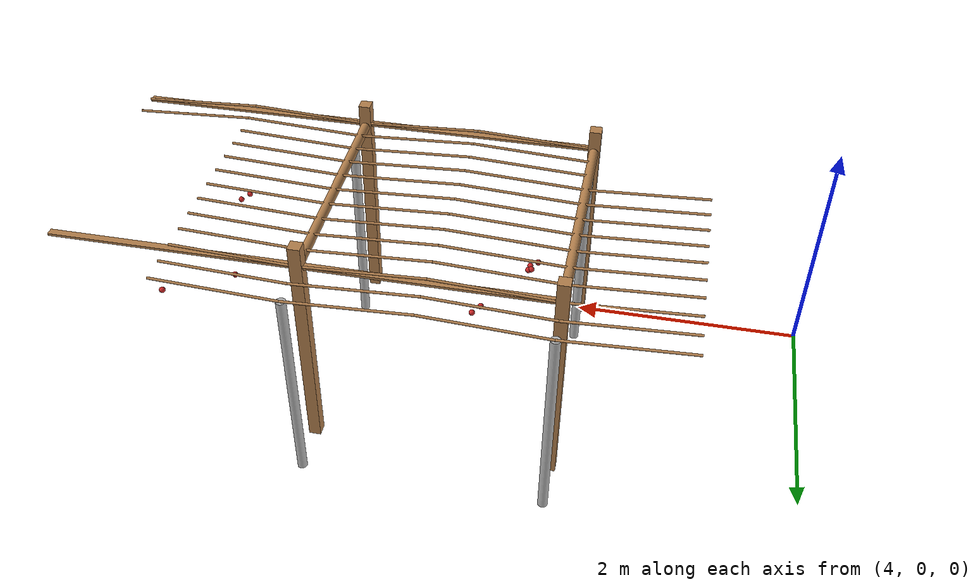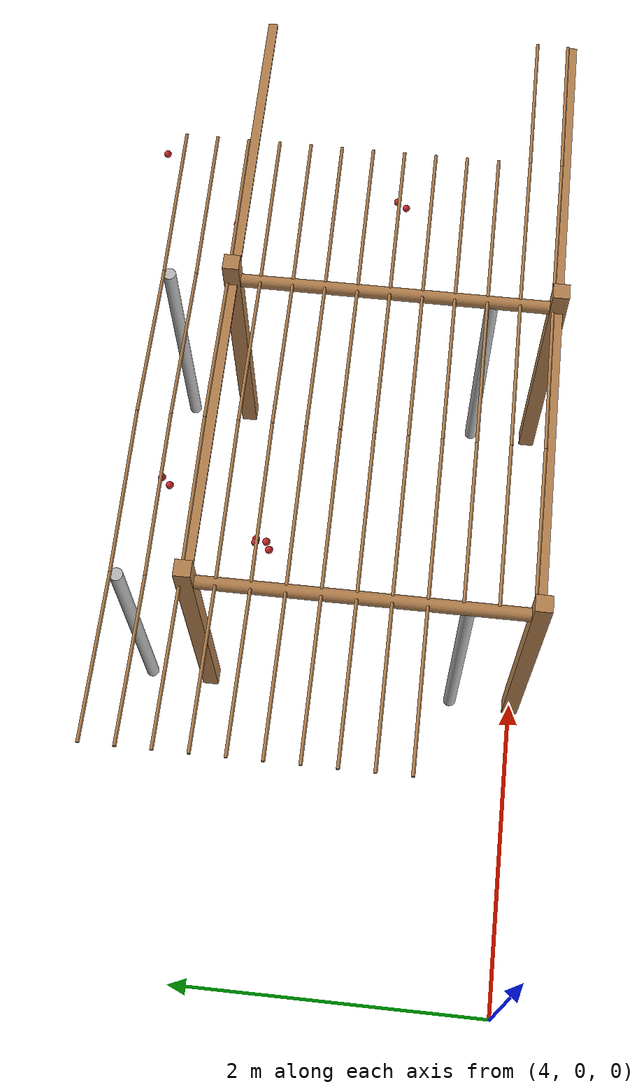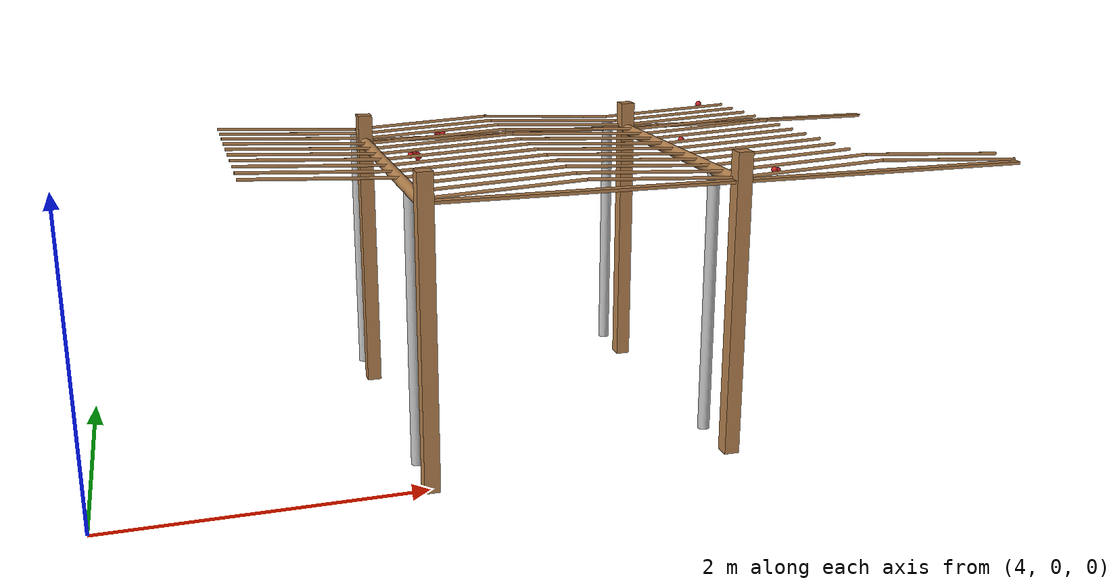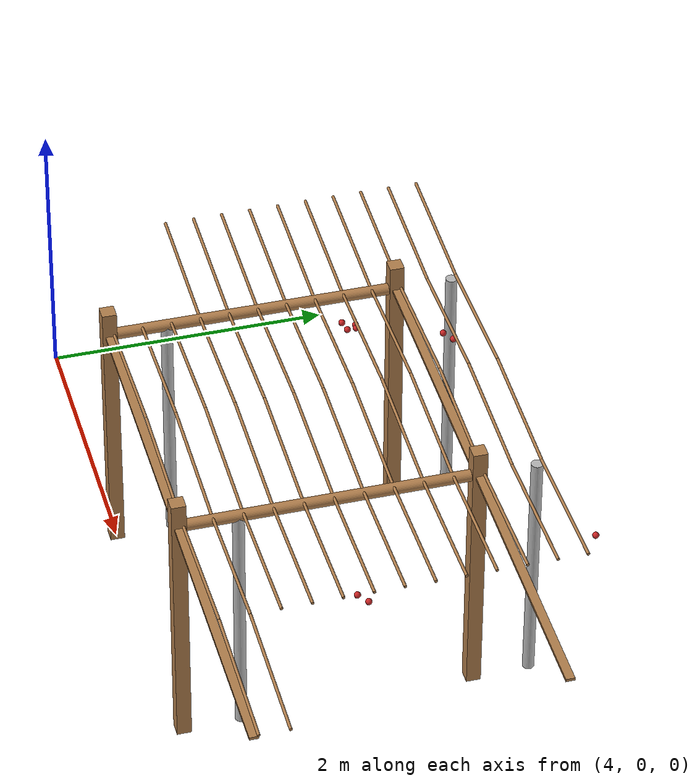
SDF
<sdf version="1.4">
 <model name="pergola">
  <include><name>post_33</name><pose>6.0 0.0 0 0 0 0</pose><uri>model://post</uri></include>
  <include><name>post_34</name><pose>6.0 2.0 0 0 0 0</pose><uri>model://post</uri></include>
  <include><name>post_44</name><pose>8.0 0.0 0 0 0 0</pose><uri>model://post</uri></include>
  <include><name>post_45</name><pose>8.0 2.0 0 0 0 0</pose><uri>model://post</uri></include>
  <link name="beam_33">
   <pose>7.0 0.0 1.81 0 0 0</pose>
   <collision name="collision"><geometry><box><size>2.0 0.06 0.02</size></box></geometry></collision>
   <visual name="visual">
    <geometry><box><size>2.0 0.06 0.02</size></box></geometry>
    <material><script><name>Gazebo/Wood</name></script></material>
   </visual>
   <inertial>
    <mass>5</mass>
    <inertia>
     <ixx>0.0016666666666666668</ixx>
     <ixy>0.0</ixy>
     <ixz>0.0</ixz>
     <iyy>1.6681666666666664</iyy>
     <iyz>0.0</iyz>
     <izz>1.6668333333333332</izz>
    </inertia>
   </inertial>
  </link>
  <link name="beam_34">
   <pose>7.0 2.0 1.81 0 0 0</pose>
   <collision name="collision"><geometry><box><size>2.0 0.06 0.02</size></box></geometry></collision>
   <visual name="visual">
    <geometry><box><size>2.0 0.06 0.02</size></box></geometry>
    <material><script><name>Gazebo/Wood</name></script></material>
   </visual>
   <inertial>
    <mass>5</mass>
    <inertia>
     <ixx>0.0016666666666666668</ixx>
     <ixy>0.0</ixy>
     <ixz>0.0</ixz>
     <iyy>1.6681666666666664</iyy>
     <iyz>0.0</iyz>
     <izz>1.6668333333333332</izz>
    </inertia>
   </inertial>
  </link>
  <link name="beam_44">
   <pose>9.0 0.0 1.81 0 0 0</pose>
   <collision name="collision"><geometry><box><size>2.0 0.06 0.02</size></box></geometry></collision>
   <visual name="visual">
    <geometry><box><size>2.0 0.06 0.02</size></box></geometry>
    <material><script><name>Gazebo/Wood</name></script></material>
   </visual>
   <inertial>
    <mass>5</mass>
    <inertia>
     <ixx>0.0016666666666666668</ixx>
     <ixy>0.0</ixy>
     <ixz>0.0</ixz>
     <iyy>1.6681666666666664</iyy>
     <iyz>0.0</iyz>
     <izz>1.6668333333333332</izz>
    </inertia>
   </inertial>
  </link>
  <link name="beam_45">
   <pose>9.0 2.0 1.81 0 0 0</pose>
   <collision name="collision"><geometry><box><size>2.0 0.06 0.02</size></box></geometry></collision>
   <visual name="visual">
    <geometry><box><size>2.0 0.06 0.02</size></box></geometry>
    <material><script><name>Gazebo/Wood</name></script></material>
   </visual>
   <inertial>
    <mass>5</mass>
    <inertia>
     <ixx>0.0016666666666666668</ixx>
     <ixy>0.0</ixy>
     <ixz>0.0</ixz>
     <iyy>1.6681666666666664</iyy>
     <iyz>0.0</iyz>
     <izz>1.6668333333333332</izz>
    </inertia>
   </inertial>
  </link>
  <include><name>tree_30</name><pose>6.0 0.4 0 0 0 0</pose><uri>model://tree_trunk</uri></include>
  <include><name>tree_31</name><pose>6.0 2.4 0 0 0 0</pose><uri>model://tree_trunk</uri></include>
  <include><name>tree_40</name><pose>8.0 0.4 0 0 0 0</pose><uri>model://tree_trunk</uri></include>
  <include><name>tree_41</name><pose>8.0 2.4 0 0 0 0</pose><uri>model://tree_trunk</uri></include>
  <link name="baseBranch_30">
   <pose>6.0 1.0 1.8 1.5707963267948966 0 0</pose>
   <collision name="collision">
    <geometry><cylinder><radius>0.04</radius><length>1.94</length></cylinder></geometry>
   </collision>
   <visual name="visual">
    <geometry><cylinder><radius>0.04</radius><length>1.94</length></cylinder></geometry>
    <material><script><name>Gazebo/WoodFloor</name></script></material>
   </visual>
   <inertial>
    <mass>10</mass>
    <inertia>
     <ixx>3.140333333333333</ixx>
     <ixy>0.0</ixy>
     <ixz>0.0</ixz>
     <iyy>3.140333333333333</iyy>
     <iyz>0.0</iyz>
     <izz>0.008</izz>
    </inertia>
   </inertial>
  </link>
  <link name="baseBranch_40">
   <pose>8.0 1.0 1.8 1.5707963267948966 0 0</pose>
   <collision name="collision">
    <geometry><cylinder><radius>0.04</radius><length>1.94</length></cylinder></geometry>
   </collision>
   <visual name="visual">
    <geometry><cylinder><radius>0.04</radius><length>1.94</length></cylinder></geometry>
    <material><script><name>Gazebo/WoodFloor</name></script></material>
   </visual>
   <inertial>
    <mass>10</mass>
    <inertia>
     <ixx>3.140333333333333</ixx>
     <ixy>0.0</ixy>
     <ixz>0.0</ixz>
     <iyy>3.140333333333333</iyy>
     <iyz>0.0</iyz>
     <izz>0.008</izz>
    </inertia>
   </inertial>
  </link>
  <link name="vine_407">
   <pose>5.5 0.6300000000000001 1.85 0 -1.5208379310729538 0</pose>
   <collision name="collision">
    <geometry><cylinder><radius>0.01</radius><length>1.0012492197250393</length></cylinder></geometry>
   </collision>
   <visual name="visual">
    <geometry><cylinder><radius>0.01</radius><length>1.0012492197250393</length></cylinder></geometry>
    <material><script><name>Gazebo/WoodFloor</name></script></material>
   </visual>
   <inertial>
    <mass>5</mass>
    <inertia>
     <ixx>0.41783333333333345</ixx>
     <ixy>0.0</ixy>
     <ixz>0.0</ixz>
     <iyy>0.41783333333333345</iyy>
     <iyz>0.0</iyz>
     <izz>0.00025</izz>
    </inertia>
   </inertial>
  </link>
  <link name="vine_409">
   <pose>5.5 0.8300000000000001 1.85 0 -1.5208379310729538 0</pose>
   <collision name="collision">
    <geometry><cylinder><radius>0.01</radius><length>1.0012492197250393</length></cylinder></geometry>
   </collision>
   <visual name="visual">
    <geometry><cylinder><radius>0.01</radius><length>1.0012492197250393</length></cylinder></geometry>
    <material><script><name>Gazebo/WoodFloor</name></script></material>
   </visual>
   <inertial>
    <mass>5</mass>
    <inertia>
     <ixx>0.41783333333333345</ixx>
     <ixy>0.0</ixy>
     <ixz>0.0</ixz>
     <iyy>0.41783333333333345</iyy>
     <iyz>0.0</iyz>
     <izz>0.00025</izz>
    </inertia>
   </inertial>
  </link>
  <link name="vine_411">
   <pose>5.5 1.03 1.85 0 -1.5208379310729538 0</pose>
   <collision name="collision">
    <geometry><cylinder><radius>0.01</radius><length>1.0012492197250393</length></cylinder></geometry>
   </collision>
   <visual name="visual">
    <geometry><cylinder><radius>0.01</radius><length>1.0012492197250393</length></cylinder></geometry>
    <material><script><name>Gazebo/WoodFloor</name></script></material>
   </visual>
   <inertial>
    <mass>5</mass>
    <inertia>
     <ixx>0.41783333333333345</ixx>
     <ixy>0.0</ixy>
     <ixz>0.0</ixz>
     <iyy>0.41783333333333345</iyy>
     <iyz>0.0</iyz>
     <izz>0.00025</izz>
    </inertia>
   </inertial>
  </link>
  <link name="vine_413">
   <pose>5.5 1.2300000000000002 1.85 0 -1.5208379310729538 0</pose>
   <collision name="collision">
    <geometry><cylinder><radius>0.01</radius><length>1.0012492197250393</length></cylinder></geometry>
   </collision>
   <visual name="visual">
    <geometry><cylinder><radius>0.01</radius><length>1.0012492197250393</length></cylinder></geometry>
    <material><script><name>Gazebo/WoodFloor</name></script></material>
   </visual>
   <inertial>
    <mass>5</mass>
    <inertia>
     <ixx>0.41783333333333345</ixx>
     <ixy>0.0</ixy>
     <ixz>0.0</ixz>
     <iyy>0.41783333333333345</iyy>
     <iyz>0.0</iyz>
     <izz>0.00025</izz>
    </inertia>
   </inertial>
  </link>
  <link name="vine_415">
   <pose>5.5 1.4300000000000002 1.85 0 -1.5208379310729538 0</pose>
   <collision name="collision">
    <geometry><cylinder><radius>0.01</radius><length>1.0012492197250393</length></cylinder></geometry>
   </collision>
   <visual name="visual">
    <geometry><cylinder><radius>0.01</radius><length>1.0012492197250393</length></cylinder></geometry>
    <material><script><name>Gazebo/WoodFloor</name></script></material>
   </visual>
   <inertial>
    <mass>5</mass>
    <inertia>
     <ixx>0.41783333333333345</ixx>
     <ixy>0.0</ixy>
     <ixz>0.0</ixz>
     <iyy>0.41783333333333345</iyy>
     <iyz>0.0</iyz>
     <izz>0.00025</izz>
    </inertia>
   </inertial>
  </link>
  <link name="vine_417">
   <pose>5.5 1.6300000000000001 1.85 0 -1.5208379310729538 0</pose>
   <collision name="collision">
    <geometry><cylinder><radius>0.01</radius><length>1.0012492197250393</length></cylinder></geometry>
   </collision>
   <visual name="visual">
    <geometry><cylinder><radius>0.01</radius><length>1.0012492197250393</length></cylinder></geometry>
    <material><script><name>Gazebo/WoodFloor</name></script></material>
   </visual>
   <inertial>
    <mass>5</mass>
    <inertia>
     <ixx>0.41783333333333345</ixx>
     <ixy>0.0</ixy>
     <ixz>0.0</ixz>
     <iyy>0.41783333333333345</iyy>
     <iyz>0.0</iyz>
     <izz>0.00025</izz>
    </inertia>
   </inertial>
  </link>
  <link name="vine_419">
   <pose>5.5 1.83 1.85 0 -1.5208379310729538 0</pose>
   <collision name="collision">
    <geometry><cylinder><radius>0.01</radius><length>1.0012492197250393</length></cylinder></geometry>
   </collision>
   <visual name="visual">
    <geometry><cylinder><radius>0.01</radius><length>1.0012492197250393</length></cylinder></geometry>
    <material><script><name>Gazebo/WoodFloor</name></script></material>
   </visual>
   <inertial>
    <mass>5</mass>
    <inertia>
     <ixx>0.41783333333333345</ixx>
     <ixy>0.0</ixy>
     <ixz>0.0</ixz>
     <iyy>0.41783333333333345</iyy>
     <iyz>0.0</iyz>
     <izz>0.00025</izz>
    </inertia>
   </inertial>
  </link>
  <link name="vine_421">
   <pose>5.5 2.03 1.85 0 -1.5208379310729538 0</pose>
   <collision name="collision">
    <geometry><cylinder><radius>0.01</radius><length>1.0012492197250393</length></cylinder></geometry>
   </collision>
   <visual name="visual">
    <geometry><cylinder><radius>0.01</radius><length>1.0012492197250393</length></cylinder></geometry>
    <material><script><name>Gazebo/WoodFloor</name></script></material>
   </visual>
   <inertial>
    <mass>5</mass>
    <inertia>
     <ixx>0.41783333333333345</ixx>
     <ixy>0.0</ixy>
     <ixz>0.0</ixz>
     <iyy>0.41783333333333345</iyy>
     <iyz>0.0</iyz>
     <izz>0.00025</izz>
    </inertia>
   </inertial>
  </link>
  <link name="vine_423">
   <pose>5.5 2.23 1.85 0 -1.5208379310729538 0</pose>
   <collision name="collision">
    <geometry><cylinder><radius>0.01</radius><length>1.0012492197250393</length></cylinder></geometry>
   </collision>
   <visual name="visual">
    <geometry><cylinder><radius>0.01</radius><length>1.0012492197250393</length></cylinder></geometry>
    <material><script><name>Gazebo/WoodFloor</name></script></material>
   </visual>
   <inertial>
    <mass>5</mass>
    <inertia>
     <ixx>0.41783333333333345</ixx>
     <ixy>0.0</ixy>
     <ixz>0.0</ixz>
     <iyy>0.41783333333333345</iyy>
     <iyz>0.0</iyz>
     <izz>0.00025</izz>
    </inertia>
   </inertial>
  </link>
  <link name="vine_425">
   <pose>5.5 2.43 1.85 0 -1.5208379310729538 0</pose>
   <collision name="collision">
    <geometry><cylinder><radius>0.01</radius><length>1.0012492197250393</length></cylinder></geometry>
   </collision>
   <visual name="visual">
    <geometry><cylinder><radius>0.01</radius><length>1.0012492197250393</length></cylinder></geometry>
    <material><script><name>Gazebo/WoodFloor</name></script></material>
   </visual>
   <inertial>
    <mass>5</mass>
    <inertia>
     <ixx>0.41783333333333345</ixx>
     <ixy>0.0</ixy>
     <ixz>0.0</ixz>
     <iyy>0.41783333333333345</iyy>
     <iyz>0.0</iyz>
     <izz>0.00025</izz>
    </inertia>
   </inertial>
  </link>
  <link name="vine_600">
   <pose>6.5 0.03 1.85 0 1.5208379310729538 0</pose>
   <collision name="collision">
    <geometry><cylinder><radius>0.01</radius><length>1.0012492197250393</length></cylinder></geometry>
   </collision>
   <visual name="visual">
    <geometry><cylinder><radius>0.01</radius><length>1.0012492197250393</length></cylinder></geometry>
    <material><script><name>Gazebo/WoodFloor</name></script></material>
   </visual>
   <inertial>
    <mass>5</mass>
    <inertia>
     <ixx>0.41783333333333345</ixx>
     <ixy>0.0</ixy>
     <ixz>0.0</ixz>
     <iyy>0.41783333333333345</iyy>
     <iyz>0.0</iyz>
     <izz>0.00025</izz>
    </inertia>
   </inertial>
  </link>
  <link name="vine_601">
   <pose>7.5 0.03 1.85 0 -1.5208379310729538 0</pose>
   <collision name="collision">
    <geometry><cylinder><radius>0.01</radius><length>1.0012492197250393</length></cylinder></geometry>
   </collision>
   <visual name="visual">
    <geometry><cylinder><radius>0.01</radius><length>1.0012492197250393</length></cylinder></geometry>
    <material><script><name>Gazebo/WoodFloor</name></script></material>
   </visual>
   <inertial>
    <mass>5</mass>
    <inertia>
     <ixx>0.41783333333333345</ixx>
     <ixy>0.0</ixy>
     <ixz>0.0</ixz>
     <iyy>0.41783333333333345</iyy>
     <iyz>0.0</iyz>
     <izz>0.00025</izz>
    </inertia>
   </inertial>
  </link>
  <link name="vine_602">
   <pose>6.5 0.23 1.85 0 1.5208379310729538 0</pose>
   <collision name="collision">
    <geometry><cylinder><radius>0.01</radius><length>1.0012492197250393</length></cylinder></geometry>
   </collision>
   <visual name="visual">
    <geometry><cylinder><radius>0.01</radius><length>1.0012492197250393</length></cylinder></geometry>
    <material><script><name>Gazebo/WoodFloor</name></script></material>
   </visual>
   <inertial>
    <mass>5</mass>
    <inertia>
     <ixx>0.41783333333333345</ixx>
     <ixy>0.0</ixy>
     <ixz>0.0</ixz>
     <iyy>0.41783333333333345</iyy>
     <iyz>0.0</iyz>
     <izz>0.00025</izz>
    </inertia>
   </inertial>
  </link>
  <link name="vine_603">
   <pose>7.5 0.23 1.85 0 -1.5208379310729538 0</pose>
   <collision name="collision">
    <geometry><cylinder><radius>0.01</radius><length>1.0012492197250393</length></cylinder></geometry>
   </collision>
   <visual name="visual">
    <geometry><cylinder><radius>0.01</radius><length>1.0012492197250393</length></cylinder></geometry>
    <material><script><name>Gazebo/WoodFloor</name></script></material>
   </visual>
   <inertial>
    <mass>5</mass>
    <inertia>
     <ixx>0.41783333333333345</ixx>
     <ixy>0.0</ixy>
     <ixz>0.0</ixz>
     <iyy>0.41783333333333345</iyy>
     <iyz>0.0</iyz>
     <izz>0.00025</izz>
    </inertia>
   </inertial>
  </link>
  <link name="vine_604">
   <pose>6.5 0.43000000000000005 1.85 0 1.5208379310729538 0</pose>
   <collision name="collision">
    <geometry><cylinder><radius>0.01</radius><length>1.0012492197250393</length></cylinder></geometry>
   </collision>
   <visual name="visual">
    <geometry><cylinder><radius>0.01</radius><length>1.0012492197250393</length></cylinder></geometry>
    <material><script><name>Gazebo/WoodFloor</name></script></material>
   </visual>
   <inertial>
    <mass>5</mass>
    <inertia>
     <ixx>0.41783333333333345</ixx>
     <ixy>0.0</ixy>
     <ixz>0.0</ixz>
     <iyy>0.41783333333333345</iyy>
     <iyz>0.0</iyz>
     <izz>0.00025</izz>
    </inertia>
   </inertial>
  </link>
  <link name="vine_605">
   <pose>7.5 0.43000000000000005 1.85 0 -1.5208379310729538 0</pose>
   <collision name="collision">
    <geometry><cylinder><radius>0.01</radius><length>1.0012492197250393</length></cylinder></geometry>
   </collision>
   <visual name="visual">
    <geometry><cylinder><radius>0.01</radius><length>1.0012492197250393</length></cylinder></geometry>
    <material><script><name>Gazebo/WoodFloor</name></script></material>
   </visual>
   <inertial>
    <mass>5</mass>
    <inertia>
     <ixx>0.41783333333333345</ixx>
     <ixy>0.0</ixy>
     <ixz>0.0</ixz>
     <iyy>0.41783333333333345</iyy>
     <iyz>0.0</iyz>
     <izz>0.00025</izz>
    </inertia>
   </inertial>
  </link>
  <link name="vine_606">
   <pose>6.5 0.6300000000000001 1.85 0 1.5208379310729538 0</pose>
   <collision name="collision">
    <geometry><cylinder><radius>0.01</radius><length>1.0012492197250393</length></cylinder></geometry>
   </collision>
   <visual name="visual">
    <geometry><cylinder><radius>0.01</radius><length>1.0012492197250393</length></cylinder></geometry>
    <material><script><name>Gazebo/WoodFloor</name></script></material>
   </visual>
   <inertial>
    <mass>5</mass>
    <inertia>
     <ixx>0.41783333333333345</ixx>
     <ixy>0.0</ixy>
     <ixz>0.0</ixz>
     <iyy>0.41783333333333345</iyy>
     <iyz>0.0</iyz>
     <izz>0.00025</izz>
    </inertia>
   </inertial>
  </link>
  <link name="vine_607">
   <pose>7.5 0.6300000000000001 1.85 0 -1.5208379310729538 0</pose>
   <collision name="collision">
    <geometry><cylinder><radius>0.01</radius><length>1.0012492197250393</length></cylinder></geometry>
   </collision>
   <visual name="visual">
    <geometry><cylinder><radius>0.01</radius><length>1.0012492197250393</length></cylinder></geometry>
    <material><script><name>Gazebo/WoodFloor</name></script></material>
   </visual>
   <inertial>
    <mass>5</mass>
    <inertia>
     <ixx>0.41783333333333345</ixx>
     <ixy>0.0</ixy>
     <ixz>0.0</ixz>
     <iyy>0.41783333333333345</iyy>
     <iyz>0.0</iyz>
     <izz>0.00025</izz>
    </inertia>
   </inertial>
  </link>
  <link name="vine_608">
   <pose>6.5 0.8300000000000001 1.85 0 1.5208379310729538 0</pose>
   <collision name="collision">
    <geometry><cylinder><radius>0.01</radius><length>1.0012492197250393</length></cylinder></geometry>
   </collision>
   <visual name="visual">
    <geometry><cylinder><radius>0.01</radius><length>1.0012492197250393</length></cylinder></geometry>
    <material><script><name>Gazebo/WoodFloor</name></script></material>
   </visual>
   <inertial>
    <mass>5</mass>
    <inertia>
     <ixx>0.41783333333333345</ixx>
     <ixy>0.0</ixy>
     <ixz>0.0</ixz>
     <iyy>0.41783333333333345</iyy>
     <iyz>0.0</iyz>
     <izz>0.00025</izz>
    </inertia>
   </inertial>
  </link>
  <link name="vine_609">
   <pose>7.5 0.8300000000000001 1.85 0 -1.5208379310729538 0</pose>
   <collision name="collision">
    <geometry><cylinder><radius>0.01</radius><length>1.0012492197250393</length></cylinder></geometry>
   </collision>
   <visual name="visual">
    <geometry><cylinder><radius>0.01</radius><length>1.0012492197250393</length></cylinder></geometry>
    <material><script><name>Gazebo/WoodFloor</name></script></material>
   </visual>
   <inertial>
    <mass>5</mass>
    <inertia>
     <ixx>0.41783333333333345</ixx>
     <ixy>0.0</ixy>
     <ixz>0.0</ixz>
     <iyy>0.41783333333333345</iyy>
     <iyz>0.0</iyz>
     <izz>0.00025</izz>
    </inertia>
   </inertial>
  </link>
  <link name="vine_610">
   <pose>6.5 1.03 1.85 0 1.5208379310729538 0</pose>
   <collision name="collision">
    <geometry><cylinder><radius>0.01</radius><length>1.0012492197250393</length></cylinder></geometry>
   </collision>
   <visual name="visual">
    <geometry><cylinder><radius>0.01</radius><length>1.0012492197250393</length></cylinder></geometry>
    <material><script><name>Gazebo/WoodFloor</name></script></material>
   </visual>
   <inertial>
    <mass>5</mass>
    <inertia>
     <ixx>0.41783333333333345</ixx>
     <ixy>0.0</ixy>
     <ixz>0.0</ixz>
     <iyy>0.41783333333333345</iyy>
     <iyz>0.0</iyz>
     <izz>0.00025</izz>
    </inertia>
   </inertial>
  </link>
  <link name="vine_611">
   <pose>7.5 1.03 1.85 0 -1.5208379310729538 0</pose>
   <collision name="collision">
    <geometry><cylinder><radius>0.01</radius><length>1.0012492197250393</length></cylinder></geometry>
   </collision>
   <visual name="visual">
    <geometry><cylinder><radius>0.01</radius><length>1.0012492197250393</length></cylinder></geometry>
    <material><script><name>Gazebo/WoodFloor</name></script></material>
   </visual>
   <inertial>
    <mass>5</mass>
    <inertia>
     <ixx>0.41783333333333345</ixx>
     <ixy>0.0</ixy>
     <ixz>0.0</ixz>
     <iyy>0.41783333333333345</iyy>
     <iyz>0.0</iyz>
     <izz>0.00025</izz>
    </inertia>
   </inertial>
  </link>
  <link name="vine_612">
   <pose>6.5 1.2300000000000002 1.85 0 1.5208379310729538 0</pose>
   <collision name="collision">
    <geometry><cylinder><radius>0.01</radius><length>1.0012492197250393</length></cylinder></geometry>
   </collision>
   <visual name="visual">
    <geometry><cylinder><radius>0.01</radius><length>1.0012492197250393</length></cylinder></geometry>
    <material><script><name>Gazebo/WoodFloor</name></script></material>
   </visual>
   <inertial>
    <mass>5</mass>
    <inertia>
     <ixx>0.41783333333333345</ixx>
     <ixy>0.0</ixy>
     <ixz>0.0</ixz>
     <iyy>0.41783333333333345</iyy>
     <iyz>0.0</iyz>
     <izz>0.00025</izz>
    </inertia>
   </inertial>
  </link>
  <link name="vine_613">
   <pose>7.5 1.2300000000000002 1.85 0 -1.5208379310729538 0</pose>
   <collision name="collision">
    <geometry><cylinder><radius>0.01</radius><length>1.0012492197250393</length></cylinder></geometry>
   </collision>
   <visual name="visual">
    <geometry><cylinder><radius>0.01</radius><length>1.0012492197250393</length></cylinder></geometry>
    <material><script><name>Gazebo/WoodFloor</name></script></material>
   </visual>
   <inertial>
    <mass>5</mass>
    <inertia>
     <ixx>0.41783333333333345</ixx>
     <ixy>0.0</ixy>
     <ixz>0.0</ixz>
     <iyy>0.41783333333333345</iyy>
     <iyz>0.0</iyz>
     <izz>0.00025</izz>
    </inertia>
   </inertial>
  </link>
  <link name="vine_614">
   <pose>6.5 1.4300000000000002 1.85 0 1.5208379310729538 0</pose>
   <collision name="collision">
    <geometry><cylinder><radius>0.01</radius><length>1.0012492197250393</length></cylinder></geometry>
   </collision>
   <visual name="visual">
    <geometry><cylinder><radius>0.01</radius><length>1.0012492197250393</length></cylinder></geometry>
    <material><script><name>Gazebo/WoodFloor</name></script></material>
   </visual>
   <inertial>
    <mass>5</mass>
    <inertia>
     <ixx>0.41783333333333345</ixx>
     <ixy>0.0</ixy>
     <ixz>0.0</ixz>
     <iyy>0.41783333333333345</iyy>
     <iyz>0.0</iyz>
     <izz>0.00025</izz>
    </inertia>
   </inertial>
  </link>
  <link name="vine_615">
   <pose>7.5 1.4300000000000002 1.85 0 -1.5208379310729538 0</pose>
   <collision name="collision">
    <geometry><cylinder><radius>0.01</radius><length>1.0012492197250393</length></cylinder></geometry>
   </collision>
   <visual name="visual">
    <geometry><cylinder><radius>0.01</radius><length>1.0012492197250393</length></cylinder></geometry>
    <material><script><name>Gazebo/WoodFloor</name></script></material>
   </visual>
   <inertial>
    <mass>5</mass>
    <inertia>
     <ixx>0.41783333333333345</ixx>
     <ixy>0.0</ixy>
     <ixz>0.0</ixz>
     <iyy>0.41783333333333345</iyy>
     <iyz>0.0</iyz>
     <izz>0.00025</izz>
    </inertia>
   </inertial>
  </link>
  <link name="vine_616">
   <pose>6.5 1.6300000000000001 1.85 0 1.5208379310729538 0</pose>
   <collision name="collision">
    <geometry><cylinder><radius>0.01</radius><length>1.0012492197250393</length></cylinder></geometry>
   </collision>
   <visual name="visual">
    <geometry><cylinder><radius>0.01</radius><length>1.0012492197250393</length></cylinder></geometry>
    <material><script><name>Gazebo/WoodFloor</name></script></material>
   </visual>
   <inertial>
    <mass>5</mass>
    <inertia>
     <ixx>0.41783333333333345</ixx>
     <ixy>0.0</ixy>
     <ixz>0.0</ixz>
     <iyy>0.41783333333333345</iyy>
     <iyz>0.0</iyz>
     <izz>0.00025</izz>
    </inertia>
   </inertial>
  </link>
  <link name="vine_617">
   <pose>7.5 1.6300000000000001 1.85 0 -1.5208379310729538 0</pose>
   <collision name="collision">
    <geometry><cylinder><radius>0.01</radius><length>1.0012492197250393</length></cylinder></geometry>
   </collision>
   <visual name="visual">
    <geometry><cylinder><radius>0.01</radius><length>1.0012492197250393</length></cylinder></geometry>
    <material><script><name>Gazebo/WoodFloor</name></script></material>
   </visual>
   <inertial>
    <mass>5</mass>
    <inertia>
     <ixx>0.41783333333333345</ixx>
     <ixy>0.0</ixy>
     <ixz>0.0</ixz>
     <iyy>0.41783333333333345</iyy>
     <iyz>0.0</iyz>
     <izz>0.00025</izz>
    </inertia>
   </inertial>
  </link>
  <link name="vine_618">
   <pose>6.5 1.83 1.85 0 1.5208379310729538 0</pose>
   <collision name="collision">
    <geometry><cylinder><radius>0.01</radius><length>1.0012492197250393</length></cylinder></geometry>
   </collision>
   <visual name="visual">
    <geometry><cylinder><radius>0.01</radius><length>1.0012492197250393</length></cylinder></geometry>
    <material><script><name>Gazebo/WoodFloor</name></script></material>
   </visual>
   <inertial>
    <mass>5</mass>
    <inertia>
     <ixx>0.41783333333333345</ixx>
     <ixy>0.0</ixy>
     <ixz>0.0</ixz>
     <iyy>0.41783333333333345</iyy>
     <iyz>0.0</iyz>
     <izz>0.00025</izz>
    </inertia>
   </inertial>
  </link>
  <link name="vine_619">
   <pose>7.5 1.83 1.85 0 -1.5208379310729538 0</pose>
   <collision name="collision">
    <geometry><cylinder><radius>0.01</radius><length>1.0012492197250393</length></cylinder></geometry>
   </collision>
   <visual name="visual">
    <geometry><cylinder><radius>0.01</radius><length>1.0012492197250393</length></cylinder></geometry>
    <material><script><name>Gazebo/WoodFloor</name></script></material>
   </visual>
   <inertial>
    <mass>5</mass>
    <inertia>
     <ixx>0.41783333333333345</ixx>
     <ixy>0.0</ixy>
     <ixz>0.0</ixz>
     <iyy>0.41783333333333345</iyy>
     <iyz>0.0</iyz>
     <izz>0.00025</izz>
    </inertia>
   </inertial>
  </link>
  <link name="vine_620">
   <pose>6.5 2.03 1.85 0 1.5208379310729538 0</pose>
   <collision name="collision">
    <geometry><cylinder><radius>0.01</radius><length>1.0012492197250393</length></cylinder></geometry>
   </collision>
   <visual name="visual">
    <geometry><cylinder><radius>0.01</radius><length>1.0012492197250393</length></cylinder></geometry>
    <material><script><name>Gazebo/WoodFloor</name></script></material>
   </visual>
   <inertial>
    <mass>5</mass>
    <inertia>
     <ixx>0.41783333333333345</ixx>
     <ixy>0.0</ixy>
     <ixz>0.0</ixz>
     <iyy>0.41783333333333345</iyy>
     <iyz>0.0</iyz>
     <izz>0.00025</izz>
    </inertia>
   </inertial>
  </link>
  <link name="vine_621">
   <pose>7.5 2.03 1.85 0 -1.5208379310729538 0</pose>
   <collision name="collision">
    <geometry><cylinder><radius>0.01</radius><length>1.0012492197250393</length></cylinder></geometry>
   </collision>
   <visual name="visual">
    <geometry><cylinder><radius>0.01</radius><length>1.0012492197250393</length></cylinder></geometry>
    <material><script><name>Gazebo/WoodFloor</name></script></material>
   </visual>
   <inertial>
    <mass>5</mass>
    <inertia>
     <ixx>0.41783333333333345</ixx>
     <ixy>0.0</ixy>
     <ixz>0.0</ixz>
     <iyy>0.41783333333333345</iyy>
     <iyz>0.0</iyz>
     <izz>0.00025</izz>
    </inertia>
   </inertial>
  </link>
  <link name="vine_622">
   <pose>6.5 2.23 1.85 0 1.5208379310729538 0</pose>
   <collision name="collision">
    <geometry><cylinder><radius>0.01</radius><length>1.0012492197250393</length></cylinder></geometry>
   </collision>
   <visual name="visual">
    <geometry><cylinder><radius>0.01</radius><length>1.0012492197250393</length></cylinder></geometry>
    <material><script><name>Gazebo/WoodFloor</name></script></material>
   </visual>
   <inertial>
    <mass>5</mass>
    <inertia>
     <ixx>0.41783333333333345</ixx>
     <ixy>0.0</ixy>
     <ixz>0.0</ixz>
     <iyy>0.41783333333333345</iyy>
     <iyz>0.0</iyz>
     <izz>0.00025</izz>
    </inertia>
   </inertial>
  </link>
  <link name="vine_623">
   <pose>7.5 2.23 1.85 0 -1.5208379310729538 0</pose>
   <collision name="collision">
    <geometry><cylinder><radius>0.01</radius><length>1.0012492197250393</length></cylinder></geometry>
   </collision>
   <visual name="visual">
    <geometry><cylinder><radius>0.01</radius><length>1.0012492197250393</length></cylinder></geometry>
    <material><script><name>Gazebo/WoodFloor</name></script></material>
   </visual>
   <inertial>
    <mass>5</mass>
    <inertia>
     <ixx>0.41783333333333345</ixx>
     <ixy>0.0</ixy>
     <ixz>0.0</ixz>
     <iyy>0.41783333333333345</iyy>
     <iyz>0.0</iyz>
     <izz>0.00025</izz>
    </inertia>
   </inertial>
  </link>
  <link name="vine_624">
   <pose>6.5 2.43 1.85 0 1.5208379310729538 0</pose>
   <collision name="collision">
    <geometry><cylinder><radius>0.01</radius><length>1.0012492197250393</length></cylinder></geometry>
   </collision>
   <visual name="visual">
    <geometry><cylinder><radius>0.01</radius><length>1.0012492197250393</length></cylinder></geometry>
    <material><script><name>Gazebo/WoodFloor</name></script></material>
   </visual>
   <inertial>
    <mass>5</mass>
    <inertia>
     <ixx>0.41783333333333345</ixx>
     <ixy>0.0</ixy>
     <ixz>0.0</ixz>
     <iyy>0.41783333333333345</iyy>
     <iyz>0.0</iyz>
     <izz>0.00025</izz>
    </inertia>
   </inertial>
  </link>
  <link name="vine_625">
   <pose>7.5 2.43 1.85 0 -1.5208379310729538 0</pose>
   <collision name="collision">
    <geometry><cylinder><radius>0.01</radius><length>1.0012492197250393</length></cylinder></geometry>
   </collision>
   <visual name="visual">
    <geometry><cylinder><radius>0.01</radius><length>1.0012492197250393</length></cylinder></geometry>
    <material><script><name>Gazebo/WoodFloor</name></script></material>
   </visual>
   <inertial>
    <mass>5</mass>
    <inertia>
     <ixx>0.41783333333333345</ixx>
     <ixy>0.0</ixy>
     <ixz>0.0</ixz>
     <iyy>0.41783333333333345</iyy>
     <iyz>0.0</iyz>
     <izz>0.00025</izz>
    </inertia>
   </inertial>
  </link>
  <link name="vine_800">
   <pose>8.5 0.03 1.85 0 1.5208379310729538 0</pose>
   <collision name="collision">
    <geometry><cylinder><radius>0.01</radius><length>1.0012492197250393</length></cylinder></geometry>
   </collision>
   <visual name="visual">
    <geometry><cylinder><radius>0.01</radius><length>1.0012492197250393</length></cylinder></geometry>
    <material><script><name>Gazebo/WoodFloor</name></script></material>
   </visual>
   <inertial>
    <mass>5</mass>
    <inertia>
     <ixx>0.41783333333333345</ixx>
     <ixy>0.0</ixy>
     <ixz>0.0</ixz>
     <iyy>0.41783333333333345</iyy>
     <iyz>0.0</iyz>
     <izz>0.00025</izz>
    </inertia>
   </inertial>
  </link>
  <link name="vine_801">
   <pose>9.5 0.03 1.85 0 -1.5208379310729538 0</pose>
   <collision name="collision">
    <geometry><cylinder><radius>0.01</radius><length>1.0012492197250393</length></cylinder></geometry>
   </collision>
   <visual name="visual">
    <geometry><cylinder><radius>0.01</radius><length>1.0012492197250393</length></cylinder></geometry>
    <material><script><name>Gazebo/WoodFloor</name></script></material>
   </visual>
   <inertial>
    <mass>5</mass>
    <inertia>
     <ixx>0.41783333333333345</ixx>
     <ixy>0.0</ixy>
     <ixz>0.0</ixz>
     <iyy>0.41783333333333345</iyy>
     <iyz>0.0</iyz>
     <izz>0.00025</izz>
    </inertia>
   </inertial>
  </link>
  <link name="vine_802">
   <pose>8.5 0.23 1.85 0 1.5208379310729538 0</pose>
   <collision name="collision">
    <geometry><cylinder><radius>0.01</radius><length>1.0012492197250393</length></cylinder></geometry>
   </collision>
   <visual name="visual">
    <geometry><cylinder><radius>0.01</radius><length>1.0012492197250393</length></cylinder></geometry>
    <material><script><name>Gazebo/WoodFloor</name></script></material>
   </visual>
   <inertial>
    <mass>5</mass>
    <inertia>
     <ixx>0.41783333333333345</ixx>
     <ixy>0.0</ixy>
     <ixz>0.0</ixz>
     <iyy>0.41783333333333345</iyy>
     <iyz>0.0</iyz>
     <izz>0.00025</izz>
    </inertia>
   </inertial>
  </link>
  <link name="vine_803">
   <pose>9.5 0.23 1.85 0 -1.5208379310729538 0</pose>
   <collision name="collision">
    <geometry><cylinder><radius>0.01</radius><length>1.0012492197250393</length></cylinder></geometry>
   </collision>
   <visual name="visual">
    <geometry><cylinder><radius>0.01</radius><length>1.0012492197250393</length></cylinder></geometry>
    <material><script><name>Gazebo/WoodFloor</name></script></material>
   </visual>
   <inertial>
    <mass>5</mass>
    <inertia>
     <ixx>0.41783333333333345</ixx>
     <ixy>0.0</ixy>
     <ixz>0.0</ixz>
     <iyy>0.41783333333333345</iyy>
     <iyz>0.0</iyz>
     <izz>0.00025</izz>
    </inertia>
   </inertial>
  </link>
  <link name="vine_804">
   <pose>8.5 0.43000000000000005 1.85 0 1.5208379310729538 0</pose>
   <collision name="collision">
    <geometry><cylinder><radius>0.01</radius><length>1.0012492197250393</length></cylinder></geometry>
   </collision>
   <visual name="visual">
    <geometry><cylinder><radius>0.01</radius><length>1.0012492197250393</length></cylinder></geometry>
    <material><script><name>Gazebo/WoodFloor</name></script></material>
   </visual>
   <inertial>
    <mass>5</mass>
    <inertia>
     <ixx>0.41783333333333345</ixx>
     <ixy>0.0</ixy>
     <ixz>0.0</ixz>
     <iyy>0.41783333333333345</iyy>
     <iyz>0.0</iyz>
     <izz>0.00025</izz>
    </inertia>
   </inertial>
  </link>
  <link name="vine_806">
   <pose>8.5 0.6300000000000001 1.85 0 1.5208379310729538 0</pose>
   <collision name="collision">
    <geometry><cylinder><radius>0.01</radius><length>1.0012492197250393</length></cylinder></geometry>
   </collision>
   <visual name="visual">
    <geometry><cylinder><radius>0.01</radius><length>1.0012492197250393</length></cylinder></geometry>
    <material><script><name>Gazebo/WoodFloor</name></script></material>
   </visual>
   <inertial>
    <mass>5</mass>
    <inertia>
     <ixx>0.41783333333333345</ixx>
     <ixy>0.0</ixy>
     <ixz>0.0</ixz>
     <iyy>0.41783333333333345</iyy>
     <iyz>0.0</iyz>
     <izz>0.00025</izz>
    </inertia>
   </inertial>
  </link>
  <link name="vine_808">
   <pose>8.5 0.8300000000000001 1.85 0 1.5208379310729538 0</pose>
   <collision name="collision">
    <geometry><cylinder><radius>0.01</radius><length>1.0012492197250393</length></cylinder></geometry>
   </collision>
   <visual name="visual">
    <geometry><cylinder><radius>0.01</radius><length>1.0012492197250393</length></cylinder></geometry>
    <material><script><name>Gazebo/WoodFloor</name></script></material>
   </visual>
   <inertial>
    <mass>5</mass>
    <inertia>
     <ixx>0.41783333333333345</ixx>
     <ixy>0.0</ixy>
     <ixz>0.0</ixz>
     <iyy>0.41783333333333345</iyy>
     <iyz>0.0</iyz>
     <izz>0.00025</izz>
    </inertia>
   </inertial>
  </link>
  <link name="vine_810">
   <pose>8.5 1.03 1.85 0 1.5208379310729538 0</pose>
   <collision name="collision">
    <geometry><cylinder><radius>0.01</radius><length>1.0012492197250393</length></cylinder></geometry>
   </collision>
   <visual name="visual">
    <geometry><cylinder><radius>0.01</radius><length>1.0012492197250393</length></cylinder></geometry>
    <material><script><name>Gazebo/WoodFloor</name></script></material>
   </visual>
   <inertial>
    <mass>5</mass>
    <inertia>
     <ixx>0.41783333333333345</ixx>
     <ixy>0.0</ixy>
     <ixz>0.0</ixz>
     <iyy>0.41783333333333345</iyy>
     <iyz>0.0</iyz>
     <izz>0.00025</izz>
    </inertia>
   </inertial>
  </link>
  <link name="vine_812">
   <pose>8.5 1.2300000000000002 1.85 0 1.5208379310729538 0</pose>
   <collision name="collision">
    <geometry><cylinder><radius>0.01</radius><length>1.0012492197250393</length></cylinder></geometry>
   </collision>
   <visual name="visual">
    <geometry><cylinder><radius>0.01</radius><length>1.0012492197250393</length></cylinder></geometry>
    <material><script><name>Gazebo/WoodFloor</name></script></material>
   </visual>
   <inertial>
    <mass>5</mass>
    <inertia>
     <ixx>0.41783333333333345</ixx>
     <ixy>0.0</ixy>
     <ixz>0.0</ixz>
     <iyy>0.41783333333333345</iyy>
     <iyz>0.0</iyz>
     <izz>0.00025</izz>
    </inertia>
   </inertial>
  </link>
  <link name="vine_814">
   <pose>8.5 1.4300000000000002 1.85 0 1.5208379310729538 0</pose>
   <collision name="collision">
    <geometry><cylinder><radius>0.01</radius><length>1.0012492197250393</length></cylinder></geometry>
   </collision>
   <visual name="visual">
    <geometry><cylinder><radius>0.01</radius><length>1.0012492197250393</length></cylinder></geometry>
    <material><script><name>Gazebo/WoodFloor</name></script></material>
   </visual>
   <inertial>
    <mass>5</mass>
    <inertia>
     <ixx>0.41783333333333345</ixx>
     <ixy>0.0</ixy>
     <ixz>0.0</ixz>
     <iyy>0.41783333333333345</iyy>
     <iyz>0.0</iyz>
     <izz>0.00025</izz>
    </inertia>
   </inertial>
  </link>
  <link name="vine_816">
   <pose>8.5 1.6300000000000001 1.85 0 1.5208379310729538 0</pose>
   <collision name="collision">
    <geometry><cylinder><radius>0.01</radius><length>1.0012492197250393</length></cylinder></geometry>
   </collision>
   <visual name="visual">
    <geometry><cylinder><radius>0.01</radius><length>1.0012492197250393</length></cylinder></geometry>
    <material><script><name>Gazebo/WoodFloor</name></script></material>
   </visual>
   <inertial>
    <mass>5</mass>
    <inertia>
     <ixx>0.41783333333333345</ixx>
     <ixy>0.0</ixy>
     <ixz>0.0</ixz>
     <iyy>0.41783333333333345</iyy>
     <iyz>0.0</iyz>
     <izz>0.00025</izz>
    </inertia>
   </inertial>
  </link>
  <link name="vine_818">
   <pose>8.5 1.83 1.85 0 1.5208379310729538 0</pose>
   <collision name="collision">
    <geometry><cylinder><radius>0.01</radius><length>1.0012492197250393</length></cylinder></geometry>
   </collision>
   <visual name="visual">
    <geometry><cylinder><radius>0.01</radius><length>1.0012492197250393</length></cylinder></geometry>
    <material><script><name>Gazebo/WoodFloor</name></script></material>
   </visual>
   <inertial>
    <mass>5</mass>
    <inertia>
     <ixx>0.41783333333333345</ixx>
     <ixy>0.0</ixy>
     <ixz>0.0</ixz>
     <iyy>0.41783333333333345</iyy>
     <iyz>0.0</iyz>
     <izz>0.00025</izz>
    </inertia>
   </inertial>
  </link>
  <link name="vine_820">
   <pose>8.5 2.03 1.85 0 1.5208379310729538 0</pose>
   <collision name="collision">
    <geometry><cylinder><radius>0.01</radius><length>1.0012492197250393</length></cylinder></geometry>
   </collision>
   <visual name="visual">
    <geometry><cylinder><radius>0.01</radius><length>1.0012492197250393</length></cylinder></geometry>
    <material><script><name>Gazebo/WoodFloor</name></script></material>
   </visual>
   <inertial>
    <mass>5</mass>
    <inertia>
     <ixx>0.41783333333333345</ixx>
     <ixy>0.0</ixy>
     <ixz>0.0</ixz>
     <iyy>0.41783333333333345</iyy>
     <iyz>0.0</iyz>
     <izz>0.00025</izz>
    </inertia>
   </inertial>
  </link>
  <link name="vine_822">
   <pose>8.5 2.23 1.85 0 1.5208379310729538 0</pose>
   <collision name="collision">
    <geometry><cylinder><radius>0.01</radius><length>1.0012492197250393</length></cylinder></geometry>
   </collision>
   <visual name="visual">
    <geometry><cylinder><radius>0.01</radius><length>1.0012492197250393</length></cylinder></geometry>
    <material><script><name>Gazebo/WoodFloor</name></script></material>
   </visual>
   <inertial>
    <mass>5</mass>
    <inertia>
     <ixx>0.41783333333333345</ixx>
     <ixy>0.0</ixy>
     <ixz>0.0</ixz>
     <iyy>0.41783333333333345</iyy>
     <iyz>0.0</iyz>
     <izz>0.00025</izz>
    </inertia>
   </inertial>
  </link>
  <link name="vine_824">
   <pose>8.5 2.43 1.85 0 1.5208379310729538 0</pose>
   <collision name="collision">
    <geometry><cylinder><radius>0.01</radius><length>1.0012492197250393</length></cylinder></geometry>
   </collision>
   <visual name="visual">
    <geometry><cylinder><radius>0.01</radius><length>1.0012492197250393</length></cylinder></geometry>
    <material><script><name>Gazebo/WoodFloor</name></script></material>
   </visual>
   <inertial>
    <mass>5</mass>
    <inertia>
     <ixx>0.41783333333333345</ixx>
     <ixy>0.0</ixy>
     <ixz>0.0</ixz>
     <iyy>0.41783333333333345</iyy>
     <iyz>0.0</iyz>
     <izz>0.00025</izz>
    </inertia>
   </inertial>
  </link>
  <link name="fruit_16">
   <pose>6.571929522573679 2.17693417490744 1.815386397254811 0 0 0</pose>
   <collision name="fruit_collision_16"><geometry><sphere><radius>0.022</radius></sphere></geometry></collision>
   <visual name="visual">
    <geometry><sphere><radius>0.022</radius></sphere></geometry>
    <material><script><name>Gazebo/Red</name></script></material>
   </visual>
   <inertial>
    <mass>0.05</mass>
    <inertia>
     <ixx>9.679999999999999e-06</ixx>
     <ixy>0.0</ixy>
     <ixz>0.0</ixz>
     <iyy>9.679999999999999e-06</iyy>
     <iyz>0.0</iyz>
     <izz>9.679999999999999e-06</izz>
    </inertia>
   </inertial>
   <sensor name="fruit_contact_16" type="contact">
    <contact><collision>fruit_collision_16</collision></contact>
   </sensor>
  </link>
  <link name="fruit_141">
   <pose>8.747354956161772 0.9892658653487019 1.6378665901045455 0 0 0</pose>
   <collision name="fruit_collision_141"><geometry><sphere><radius>0.022</radius></sphere></geometry></collision>
   <visual name="visual">
    <geometry><sphere><radius>0.022</radius></sphere></geometry>
    <material><script><name>Gazebo/Red</name></script></material>
   </visual>
   <inertial>
    <mass>0.05</mass>
    <inertia>
     <ixx>9.679999999999999e-06</ixx>
     <ixy>0.0</ixy>
     <ixz>0.0</ixz>
     <iyy>9.679999999999999e-06</iyy>
     <iyz>0.0</iyz>
     <izz>9.679999999999999e-06</izz>
    </inertia>
   </inertial>
   <sensor name="fruit_contact_141" type="contact">
    <contact><collision>fruit_collision_141</collision></contact>
   </sensor>
  </link>
  <link name="fruit_227">
   <pose>8.48533807131081 2.048541396653087 1.6807650345169174 0 0 0</pose>
   <collision name="fruit_collision_227"><geometry><sphere><radius>0.022</radius></sphere></geometry></collision>
   <visual name="visual">
    <geometry><sphere><radius>0.022</radius></sphere></geometry>
    <material><script><name>Gazebo/Red</name></script></material>
   </visual>
   <inertial>
    <mass>0.05</mass>
    <inertia>
     <ixx>9.679999999999999e-06</ixx>
     <ixy>0.0</ixy>
     <ixz>0.0</ixz>
     <iyy>9.679999999999999e-06</iyy>
     <iyz>0.0</iyz>
     <izz>9.679999999999999e-06</izz>
    </inertia>
   </inertial>
   <sensor name="fruit_contact_227" type="contact">
    <contact><collision>fruit_collision_227</collision></contact>
   </sensor>
  </link>
  <link name="fruit_298">
   <pose>8.838296773906732 2.5289567036938774 1.87298354417817 0 0 0</pose>
   <collision name="fruit_collision_298"><geometry><sphere><radius>0.022</radius></sphere></geometry></collision>
   <visual name="visual">
    <geometry><sphere><radius>0.022</radius></sphere></geometry>
    <material><script><name>Gazebo/Red</name></script></material>
   </visual>
   <inertial>
    <mass>0.05</mass>
    <inertia>
     <ixx>9.679999999999999e-06</ixx>
     <ixy>0.0</ixy>
     <ixz>0.0</ixz>
     <iyy>9.679999999999999e-06</iyy>
     <iyz>0.0</iyz>
     <izz>9.679999999999999e-06</izz>
    </inertia>
   </inertial>
   <sensor name="fruit_contact_298" type="contact">
    <contact><collision>fruit_collision_298</collision></contact>
   </sensor>
  </link>
  <link name="fruit_316">
   <pose>6.2462516152150025 1.5589155391132477 1.7764804535421828 0 0 0</pose>
   <collision name="fruit_collision_316"><geometry><sphere><radius>0.022</radius></sphere></geometry></collision>
   <visual name="visual">
    <geometry><sphere><radius>0.022</radius></sphere></geometry>
    <material><script><name>Gazebo/Red</name></script></material>
   </visual>
   <inertial>
    <mass>0.05</mass>
    <inertia>
     <ixx>9.679999999999999e-06</ixx>
     <ixy>0.0</ixy>
     <ixz>0.0</ixz>
     <iyy>9.679999999999999e-06</iyy>
     <iyz>0.0</iyz>
     <izz>9.679999999999999e-06</izz>
    </inertia>
   </inertial>
   <sensor name="fruit_contact_316" type="contact">
    <contact><collision>fruit_collision_316</collision></contact>
   </sensor>
  </link>
  <link name="fruit_360">
   <pose>8.803911310872548 1.0488198320742026 1.617089151632295 0 0 0</pose>
   <collision name="fruit_collision_360"><geometry><sphere><radius>0.022</radius></sphere></geometry></collision>
   <visual name="visual">
    <geometry><sphere><radius>0.022</radius></sphere></geometry>
    <material><script><name>Gazebo/Red</name></script></material>
   </visual>
   <inertial>
    <mass>0.05</mass>
    <inertia>
     <ixx>9.679999999999999e-06</ixx>
     <ixy>0.0</ixy>
     <ixz>0.0</ixz>
     <iyy>9.679999999999999e-06</iyy>
     <iyz>0.0</iyz>
     <izz>9.679999999999999e-06</izz>
    </inertia>
   </inertial>
   <sensor name="fruit_contact_360" type="contact">
    <contact><collision>fruit_collision_360</collision></contact>
   </sensor>
  </link>
  <link name="fruit_835">
   <pose>6.626325409926688 2.2326883238159723 1.7946771431569015 0 0 0</pose>
   <collision name="fruit_collision_835"><geometry><sphere><radius>0.022</radius></sphere></geometry></collision>
   <visual name="visual">
    <geometry><sphere><radius>0.022</radius></sphere></geometry>
    <material><script><name>Gazebo/Red</name></script></material>
   </visual>
   <inertial>
    <mass>0.05</mass>
    <inertia>
     <ixx>9.679999999999999e-06</ixx>
     <ixy>0.0</ixy>
     <ixz>0.0</ixz>
     <iyy>9.679999999999999e-06</iyy>
     <iyz>0.0</iyz>
     <izz>9.679999999999999e-06</izz>
    </inertia>
   </inertial>
   <sensor name="fruit_contact_835" type="contact">
    <contact><collision>fruit_collision_835</collision></contact>
   </sensor>
  </link>
  <link name="fruit_870">
   <pose>6.302064673242092 1.582563896069016 1.7546933895682093 0 0 0</pose>
   <collision name="fruit_collision_870"><geometry><sphere><radius>0.022</radius></sphere></geometry></collision>
   <visual name="visual">
    <geometry><sphere><radius>0.022</radius></sphere></geometry>
    <material><script><name>Gazebo/Red</name></script></material>
   </visual>
   <inertial>
    <mass>0.05</mass>
    <inertia>
     <ixx>9.679999999999999e-06</ixx>
     <ixy>0.0</ixy>
     <ixz>0.0</ixz>
     <iyy>9.679999999999999e-06</iyy>
     <iyz>0.0</iyz>
     <izz>9.679999999999999e-06</izz>
    </inertia>
   </inertial>
   <sensor name="fruit_contact_870" type="contact">
    <contact><collision>fruit_collision_870</collision></contact>
   </sensor>
  </link>
  <link name="fruit_872">
   <pose>6.308150869052804 1.6425098724042348 1.7609751760196368 0 0 0</pose>
   <collision name="fruit_collision_872"><geometry><sphere><radius>0.022</radius></sphere></geometry></collision>
   <visual name="visual">
    <geometry><sphere><radius>0.022</radius></sphere></geometry>
    <material><script><name>Gazebo/Red</name></script></material>
   </visual>
   <inertial>
    <mass>0.05</mass>
    <inertia>
     <ixx>9.679999999999999e-06</ixx>
     <ixy>0.0</ixy>
     <ixz>0.0</ixz>
     <iyy>9.679999999999999e-06</iyy>
     <iyz>0.0</iyz>
     <izz>9.679999999999999e-06</izz>
    </inertia>
   </inertial>
   <sensor name="fruit_contact_872" type="contact">
    <contact><collision>fruit_collision_872</collision></contact>
   </sensor>
  </link>
  <link name="fruit_889">
   <pose>6.286054878404433 1.6440128370582818 1.772467391712906 0 0 0</pose>
   <collision name="fruit_collision_889"><geometry><sphere><radius>0.022</radius></sphere></geometry></collision>
   <visual name="visual">
    <geometry><sphere><radius>0.022</radius></sphere></geometry>
    <material><script><name>Gazebo/Red</name></script></material>
   </visual>
   <inertial>
    <mass>0.05</mass>
    <inertia>
     <ixx>9.679999999999999e-06</ixx>
     <ixy>0.0</ixy>
     <ixz>0.0</ixz>
     <iyy>9.679999999999999e-06</iyy>
     <iyz>0.0</iyz>
     <izz>9.679999999999999e-06</izz>
    </inertia>
   </inertial>
   <sensor name="fruit_contact_889" type="contact">
    <contact><collision>fruit_collision_889</collision></contact>
   </sensor>
  </link>
 </model>
</sdf>
